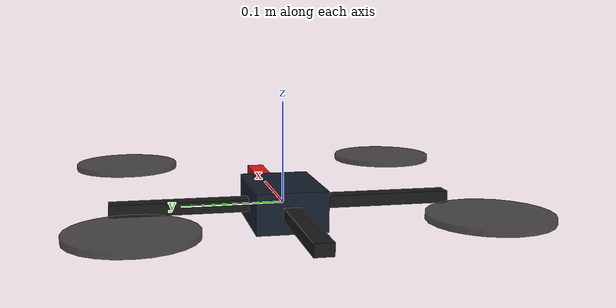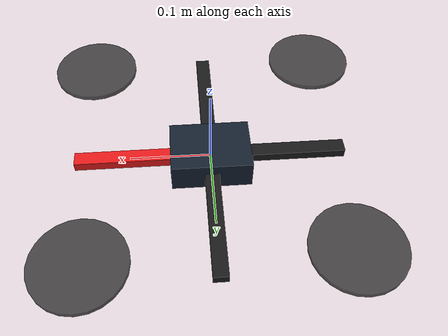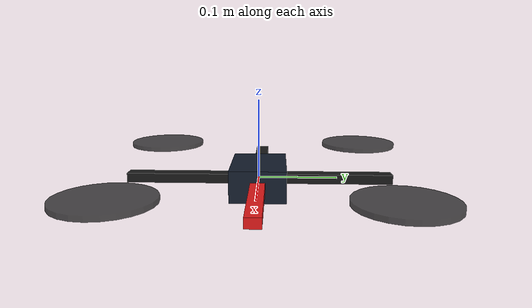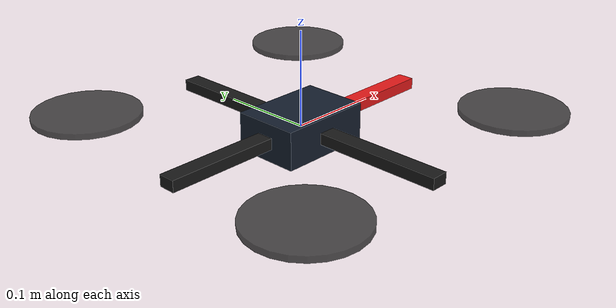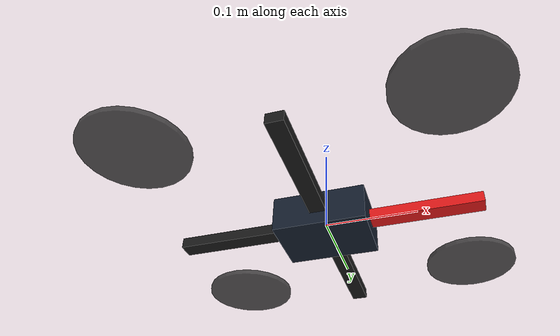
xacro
<?xml version="1.0"?>
<robot xmlns:xacro="http://www.ros.org/wiki/xacro" name="drone">
  <xacro:macro name="box_inertial" params="mass x y z">
    <inertial>
      <mass value="${mass}"/>
      <inertia ixx="${mass*(y*y+z*z)/12}" ixy="0" ixz="0"
               iyy="${mass*(x*x+z*z)/12}" iyz="0"
               izz="${mass*(x*x+y*y)/12}"/>
    </inertial>
  </xacro:macro>
  <link name="drone_base_link">
    <visual>
      <geometry><box size="0.10 0.07 0.04"/></geometry>
      <material name="body"><color rgba="0.08 0.12 0.18 1"/></material>
    </visual>
    <collision><geometry><box size="0.10 0.07 0.04"/></geometry></collision>
    <xacro:box_inertial mass="0.25" x="0.10" y="0.07" z="0.04"/>
  </link>
  <gazebo reference="drone_base_link"><gravity>false</gravity></gazebo>

  <xacro:macro name="arm" params="name x y yaw color">
    <link name="${name}_arm_link">
      <visual>
        <geometry><box size="0.18 0.018 0.012"/></geometry>
        <material name="${name}_color"><color rgba="${color}"/></material>
      </visual>
      <collision><geometry><box size="0.18 0.018 0.012"/></geometry></collision>
      <xacro:box_inertial mass="0.02" x="0.18" y="0.018" z="0.012"/>
    </link>
    <joint name="${name}_arm_joint" type="fixed">
      <parent link="drone_base_link"/><child link="${name}_arm_link"/>
      <origin xyz="${x} ${y} 0" rpy="0 0 ${yaw}"/>
    </joint>
  </xacro:macro>
  <xacro:arm name="front" x="0.08" y="0" yaw="0" color="0.9 0.1 0.1 1"/>
  <xacro:arm name="rear" x="-0.08" y="0" yaw="0" color="0.1 0.1 0.1 1"/>
  <xacro:arm name="left" x="0" y="0.08" yaw="1.57079632679" color="0.1 0.1 0.1 1"/>
  <xacro:arm name="right" x="0" y="-0.08" yaw="1.57079632679" color="0.1 0.1 0.1 1"/>

  <xacro:macro name="rotor" params="index parent x y">
    <link name="rotor_${index}_link">
      <visual>
        <geometry><cylinder radius="0.055" length="0.006"/></geometry>
        <material name="rotor_${index}"><color rgba="0.15 0.15 0.15 0.8"/></material>
      </visual>
      <collision><geometry><cylinder radius="0.055" length="0.006"/></geometry></collision>
      <inertial><mass value="0.005"/>
        <inertia ixx="0.000004" ixy="0" ixz="0" iyy="0.000004" iyz="0" izz="0.000008"/>
      </inertial>
    </link>
    <joint name="rotor_${index}_joint" type="fixed">
      <parent link="${parent}"/><child link="rotor_${index}_link"/>
      <origin xyz="${x} ${y} 0.015"/>
    </joint>
  </xacro:macro>
  <xacro:rotor index="1" parent="drone_base_link" x="0.15" y="0.15"/>
  <xacro:rotor index="2" parent="drone_base_link" x="0.15" y="-0.15"/>
  <xacro:rotor index="3" parent="drone_base_link" x="-0.15" y="0.15"/>
  <xacro:rotor index="4" parent="drone_base_link" x="-0.15" y="-0.15"/>
</robot>
